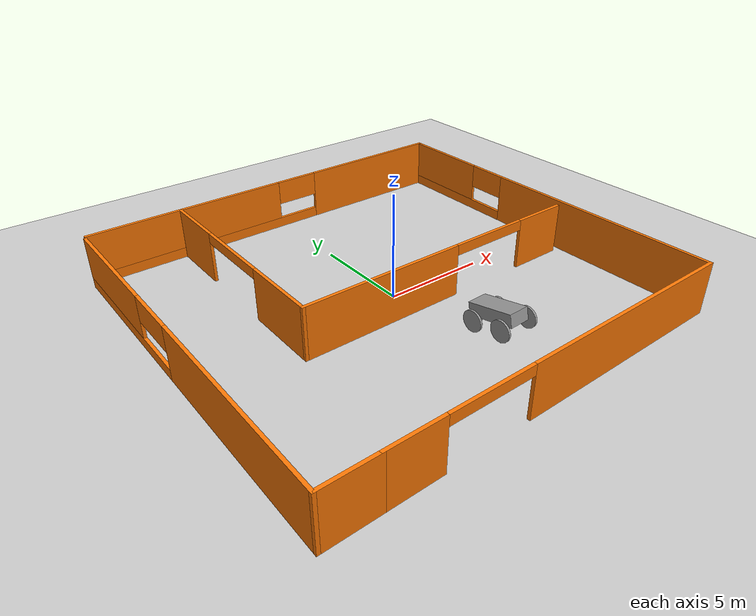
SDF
<sdf version="1.6">
 <world name="default">
  <model name="ground_plane">
   <static>1</static>
   <link name="link">
    <collision name="collision">
     <geometry><plane><normal>0 0 1</normal><size>100 100</size></plane></geometry>
     <surface>
      <contact><collide_bitmask>65535</collide_bitmask></contact>
      <friction><ode><mu>100</mu><mu2>50</mu2></ode></friction>
     </surface>
    </collision>
    <visual name="visual">
     <cast_shadows>0</cast_shadows>
     <geometry><plane><normal>0 0 1</normal><size>100 100</size></plane></geometry>
     <material>
      <script><uri>file://media/materials/scripts/gazebo.material</uri><name>Gazebo/Grey</name></script>
     </material>
    </visual>
   </link>
  </model>
  <model name="ground_plane">
   <static>1</static>
   <link name="link">
    <collision name="collision">
     <geometry><plane><normal>0 0 1</normal><size>100 100</size></plane></geometry>
     <surface>
      <contact><collide_bitmask>65535</collide_bitmask></contact>
      <friction><ode><mu>100</mu><mu2>50</mu2></ode></friction>
     </surface>
    </collision>
    <visual name="visual">
     <cast_shadows>0</cast_shadows>
     <geometry><plane><normal>0 0 1</normal><size>100 100</size></plane></geometry>
     <material>
      <script><uri>file://media/materials/scripts/gazebo.material</uri><name>Gazebo/Grey</name></script>
     </material>
    </visual>
   </link>
  </model>
  <model name="table">
   <static>1</static>
   <link name="link">
    <collision name="surface">
     <pose>0 0 1 0 -0 0</pose>
     <geometry><box><size>1.5 0.8 0.03</size></box></geometry>
     <surface><friction><ode><mu>0.6</mu><mu2>0.6</mu2></ode></friction></surface>
    </collision>
    <visual name="visual1">
     <pose>0 0 1 0 -0 0</pose>
     <geometry><box><size>1.5 0.8 0.03</size></box></geometry>
     <material>
      <script><uri>file://media/materials/scripts/gazebo.material</uri><name>Gazebo/Wood</name></script>
     </material>
    </visual>
    <collision name="front_left_leg">
     <pose>0.68 0.38 0.5 0 -0 0</pose>
     <geometry><cylinder><radius>0.02</radius><length>1</length></cylinder></geometry>
    </collision>
    <visual name="front_left_leg">
     <pose>0.68 0.38 0.5 0 -0 0</pose>
     <geometry><cylinder><radius>0.02</radius><length>1</length></cylinder></geometry>
     <material>
      <script><uri>file://media/materials/scripts/gazebo.material</uri><name>Gazebo/Grey</name></script>
     </material>
    </visual>
    <collision name="front_right_leg">
     <pose>0.68 -0.38 0.5 0 -0 0</pose>
     <geometry><cylinder><radius>0.02</radius><length>1</length></cylinder></geometry>
    </collision>
    <visual name="front_right_leg">
     <pose>0.68 -0.38 0.5 0 -0 0</pose>
     <geometry><cylinder><radius>0.02</radius><length>1</length></cylinder></geometry>
     <material>
      <script><uri>file://media/materials/scripts/gazebo.material</uri><name>Gazebo/Grey</name></script>
     </material>
    </visual>
    <collision name="back_right_leg">
     <pose>-0.68 -0.38 0.5 0 -0 0</pose>
     <geometry><cylinder><radius>0.02</radius><length>1</length></cylinder></geometry>
    </collision>
    <visual name="back_right_leg">
     <pose>-0.68 -0.38 0.5 0 -0 0</pose>
     <geometry><cylinder><radius>0.02</radius><length>1</length></cylinder></geometry>
     <material>
      <script><uri>file://media/materials/scripts/gazebo.material</uri><name>Gazebo/Grey</name></script>
     </material>
    </visual>
    <collision name="back_left_leg">
     <pose>-0.68 0.38 0.5 0 -0 0</pose>
     <geometry><cylinder><radius>0.02</radius><length>1</length></cylinder></geometry>
    </collision>
    <visual name="back_left_leg">
     <pose>-0.68 0.38 0.5 0 -0 0</pose>
     <geometry><cylinder><radius>0.02</radius><length>1</length></cylinder></geometry>
     <material>
      <script><uri>file://media/materials/scripts/gazebo.material</uri><name>Gazebo/Grey</name></script>
     </material>
    </visual>
   </link>
  </model>
  <model name="buildingmodel">
   <pose>-0.320081 0.0932 0 0 -0 0</pose>
   <link name="Wall_16">
    <pose>1.175 -9.3 0 0 -0 0</pose>
    <visual name="Wall_16_Visual_0">
     <pose>-7.45803 0 1.25 0 -0 0</pose>
     <geometry><box><size>2.58395 0.15 2.5</size></box></geometry>
     <material>
      <script><uri>file://media/materials/scripts/gazebo.material</uri><name>Gazebo/Grey</name></script>
      <ambient>0.996078 0.47451 0.0196078 1</ambient>
     </material>
     <meta><layer>0</layer></meta>
    </visual>
    <collision name="Wall_16_Collision_0">
     <geometry><box><size>2.58395 0.15 2.5</size></box></geometry>
     <pose>-7.45803 0 1.25 0 -0 0</pose>
    </collision>
    <visual name="Wall_16_Visual_1">
     <pose>3.26705 0 1.25 0 -0 0</pose>
     <geometry><box><size>10.9659 0.15 2.5</size></box></geometry>
     <material>
      <script><uri>file://media/materials/scripts/gazebo.material</uri><name>Gazebo/Grey</name></script>
      <ambient>0.996078 0.47451 0.0196078 1</ambient>
     </material>
     <meta><layer>0</layer></meta>
    </visual>
    <collision name="Wall_16_Collision_1">
     <geometry><box><size>10.9659 0.15 2.5</size></box></geometry>
     <pose>3.26705 0 1.25 0 -0 0</pose>
    </collision>
    <visual name="Wall_16_Visual_2">
     <pose>-4.19098 0 2.25 0 -0 0</pose>
     <geometry><box><size>3.95016 0.15 0.5</size></box></geometry>
     <material>
      <script><uri>file://media/materials/scripts/gazebo.material</uri><name>Gazebo/Grey</name></script>
      <ambient>0.996078 0.47451 0.0196078 1</ambient>
     </material>
     <meta><layer>0</layer></meta>
    </visual>
    <collision name="Wall_16_Collision_2">
     <geometry><box><size>3.95016 0.15 0.5</size></box></geometry>
     <pose>-4.19098 0 2.25 0 -0 0</pose>
    </collision>
   </link>
   <link name="Wall_19">
    <collision name="Wall_19_Collision">
     <geometry><box><size>2.5 0.15 2.5</size></box></geometry>
     <pose>0 0 1.25 0 -0 0</pose>
    </collision>
    <visual name="Wall_19_Visual">
     <pose>0 0 1.25 0 -0 0</pose>
     <geometry><box><size>2.5 0.15 2.5</size></box></geometry>
     <material>
      <script><uri>file://media/materials/scripts/gazebo.material</uri><name>Gazebo/Grey</name></script>
      <ambient>0.996078 0.47451 0.0196078 1</ambient>
     </material>
     <meta><layer>0</layer></meta>
    </visual>
    <pose>-8.675 -9.3 0 0 -0 3.14159</pose>
   </link>
   <link name="Wall_39">
    <pose>9.85 0 0 0 -0 1.5708</pose>
    <visual name="Wall_39_Visual_0">
     <pose>-3.40224 0 1.25 0 -0 0</pose>
     <geometry><box><size>11.9455 0.15 2.5</size></box></geometry>
     <material>
      <script><uri>file://media/materials/scripts/gazebo.material</uri><name>Gazebo/Grey</name></script>
      <ambient>0.996078 0.47451 0.0196078 1</ambient>
     </material>
     <meta><layer>0</layer></meta>
    </visual>
    <collision name="Wall_39_Collision_0">
     <geometry><box><size>11.9455 0.15 2.5</size></box></geometry>
     <pose>-3.40224 0 1.25 0 -0 0</pose>
    </collision>
    <visual name="Wall_39_Visual_1">
     <pose>5.97276 0 0.25 0 -0 0</pose>
     <geometry><box><size>6.80448 0.15 0.5</size></box></geometry>
     <material>
      <script><uri>file://media/materials/scripts/gazebo.material</uri><name>Gazebo/Grey</name></script>
      <ambient>0.996078 0.47451 0.0196078 1</ambient>
     </material>
     <meta><layer>0</layer></meta>
    </visual>
    <collision name="Wall_39_Collision_1">
     <geometry><box><size>6.80448 0.15 0.5</size></box></geometry>
     <pose>5.97276 0 0.25 0 -0 0</pose>
    </collision>
    <visual name="Wall_39_Visual_2">
     <pose>6.99343 0 1.5 0 -0 0</pose>
     <geometry><box><size>4.76314 0.15 2</size></box></geometry>
     <material>
      <script><uri>file://media/materials/scripts/gazebo.material</uri><name>Gazebo/Grey</name></script>
      <ambient>0.996078 0.47451 0.0196078 1</ambient>
     </material>
     <meta><layer>0</layer></meta>
    </visual>
    <collision name="Wall_39_Collision_2">
     <geometry><box><size>4.76314 0.15 2</size></box></geometry>
     <pose>6.99343 0 1.5 0 -0 0</pose>
    </collision>
    <visual name="Wall_39_Visual_3">
     <pose>3.59119 0 1.9 0 -0 0</pose>
     <geometry><box><size>2.04134 0.15 1.2</size></box></geometry>
     <material>
      <script><uri>file://media/materials/scripts/gazebo.material</uri><name>Gazebo/Grey</name></script>
      <ambient>0.996078 0.47451 0.0196078 1</ambient>
     </material>
     <meta><layer>0</layer></meta>
    </visual>
    <collision name="Wall_39_Collision_3">
     <geometry><box><size>2.04134 0.15 1.2</size></box></geometry>
     <pose>3.59119 0 1.9 0 -0 0</pose>
    </collision>
   </link>
   <link name="Wall_40">
    <pose>0.05 9.3 0 0 -0 3.14159</pose>
    <visual name="Wall_40_Visual_0">
     <pose>-6.06574 0 1.25 0 -0 0</pose>
     <geometry><box><size>7.61852 0.15 2.5</size></box></geometry>
     <material>
      <script><uri>file://media/materials/scripts/gazebo.material</uri><name>Gazebo/Grey</name></script>
      <ambient>0.996078 0.47451 0.0196078 1</ambient>
     </material>
     <meta><layer>0</layer></meta>
    </visual>
    <collision name="Wall_40_Collision_0">
     <geometry><box><size>7.61852 0.15 2.5</size></box></geometry>
     <pose>-6.06574 0 1.25 0 -0 0</pose>
    </collision>
    <visual name="Wall_40_Visual_1">
     <pose>3.80926 0 0.25 0 -0 0</pose>
     <geometry><box><size>12.1315 0.15 0.5</size></box></geometry>
     <material>
      <script><uri>file://media/materials/scripts/gazebo.material</uri><name>Gazebo/Grey</name></script>
      <ambient>0.996078 0.47451 0.0196078 1</ambient>
     </material>
     <meta><layer>0</layer></meta>
    </visual>
    <collision name="Wall_40_Collision_1">
     <geometry><box><size>12.1315 0.15 0.5</size></box></geometry>
     <pose>3.80926 0 0.25 0 -0 0</pose>
    </collision>
    <visual name="Wall_40_Visual_2">
     <pose>4.90087 0 1.5 0 -0 0</pose>
     <geometry><box><size>9.94827 0.15 2</size></box></geometry>
     <material>
      <script><uri>file://media/materials/scripts/gazebo.material</uri><name>Gazebo/Grey</name></script>
      <ambient>0.996078 0.47451 0.0196078 1</ambient>
     </material>
     <meta><layer>0</layer></meta>
    </visual>
    <collision name="Wall_40_Collision_2">
     <geometry><box><size>9.94827 0.15 2</size></box></geometry>
     <pose>4.90087 0 1.5 0 -0 0</pose>
    </collision>
    <visual name="Wall_40_Visual_3">
     <pose>-1.16487 0 1.9 0 -0 0</pose>
     <geometry><box><size>2.18321 0.15 1.2</size></box></geometry>
     <material>
      <script><uri>file://media/materials/scripts/gazebo.material</uri><name>Gazebo/Grey</name></script>
      <ambient>0.996078 0.47451 0.0196078 1</ambient>
     </material>
     <meta><layer>0</layer></meta>
    </visual>
    <collision name="Wall_40_Collision_3">
     <geometry><box><size>2.18321 0.15 1.2</size></box></geometry>
     <pose>-1.16487 0 1.9 0 -0 0</pose>
    </collision>
   </link>
   <link name="Wall_42">
    <pose>-9.85 -0.125 0 0 -0 1.5708</pose>
    <visual name="Wall_42_Visual_0">
     <pose>-4.32759 0 1.25 0 -0 0</pose>
     <geometry><box><size>9.84482 0.15 2.5</size></box></geometry>
     <material>
      <script><uri>file://media/materials/scripts/gazebo.material</uri><name>Gazebo/Grey</name></script>
      <ambient>0.996078 0.47451 0.0196078 1</ambient>
     </material>
     <meta><layer>0</layer></meta>
    </visual>
    <collision name="Wall_42_Collision_0">
     <geometry><box><size>9.84482 0.15 2.5</size></box></geometry>
     <pose>-4.32759 0 1.25 0 -0 0</pose>
    </collision>
    <visual name="Wall_42_Visual_1">
     <pose>4.92241 0 0.25 0 -0 0</pose>
     <geometry><box><size>8.65518 0.15 0.5</size></box></geometry>
     <material>
      <script><uri>file://media/materials/scripts/gazebo.material</uri><name>Gazebo/Grey</name></script>
      <ambient>0.996078 0.47451 0.0196078 1</ambient>
     </material>
     <meta><layer>0</layer></meta>
    </visual>
    <collision name="Wall_42_Collision_1">
     <geometry><box><size>8.65518 0.15 0.5</size></box></geometry>
     <pose>4.92241 0 0.25 0 -0 0</pose>
    </collision>
    <visual name="Wall_42_Visual_2">
     <pose>6.20908 0 1.5 0 -0 0</pose>
     <geometry><box><size>6.08183 0.15 2</size></box></geometry>
     <material>
      <script><uri>file://media/materials/scripts/gazebo.material</uri><name>Gazebo/Grey</name></script>
      <ambient>0.996078 0.47451 0.0196078 1</ambient>
     </material>
     <meta><layer>0</layer></meta>
    </visual>
    <collision name="Wall_42_Collision_2">
     <geometry><box><size>6.08183 0.15 2</size></box></geometry>
     <pose>6.20908 0 1.5 0 -0 0</pose>
    </collision>
    <visual name="Wall_42_Visual_3">
     <pose>1.88149 0 1.9 0 -0 0</pose>
     <geometry><box><size>2.57335 0.15 1.2</size></box></geometry>
     <material>
      <script><uri>file://media/materials/scripts/gazebo.material</uri><name>Gazebo/Grey</name></script>
      <ambient>0.996078 0.47451 0.0196078 1</ambient>
     </material>
     <meta><layer>0</layer></meta>
    </visual>
    <collision name="Wall_42_Collision_3">
     <geometry><box><size>2.57335 0.15 1.2</size></box></geometry>
     <pose>1.88149 0 1.9 0 -0 0</pose>
    </collision>
   </link>
   <link name="Wall_45">
    <pose>2.02344 -1.60383 0 0 -0 3.14159</pose>
    <visual name="Wall_45_Visual_0">
     <pose>-6.0053 0 1.25 0 -0 0</pose>
     <geometry><box><size>2.7394 0.15 2.5</size></box></geometry>
     <material>
      <script><uri>file://media/materials/scripts/gazebo.material</uri><name>Gazebo/Grey</name></script>
      <ambient>0.996078 0.47451 0.0196078 1</ambient>
     </material>
     <meta><layer>0</layer></meta>
    </visual>
    <collision name="Wall_45_Collision_0">
     <geometry><box><size>2.7394 0.15 2.5</size></box></geometry>
     <pose>-6.0053 0 1.25 0 -0 0</pose>
    </collision>
    <visual name="Wall_45_Visual_1">
     <pose>3.35584 0 1.25 0 -0 0</pose>
     <geometry><box><size>8.03832 0.15 2.5</size></box></geometry>
     <material>
      <script><uri>file://media/materials/scripts/gazebo.material</uri><name>Gazebo/Grey</name></script>
      <ambient>0.996078 0.47451 0.0196078 1</ambient>
     </material>
     <meta><layer>0</layer></meta>
    </visual>
    <collision name="Wall_45_Collision_1">
     <geometry><box><size>8.03832 0.15 2.5</size></box></geometry>
     <pose>3.35584 0 1.25 0 -0 0</pose>
    </collision>
    <visual name="Wall_45_Visual_2">
     <pose>-2.64946 0 2.25 0 -0 0</pose>
     <geometry><box><size>3.97228 0.15 0.5</size></box></geometry>
     <material>
      <script><uri>file://media/materials/scripts/gazebo.material</uri><name>Gazebo/Grey</name></script>
      <ambient>0.996078 0.47451 0.0196078 1</ambient>
     </material>
     <meta><layer>0</layer></meta>
    </visual>
    <collision name="Wall_45_Collision_2">
     <geometry><box><size>3.97228 0.15 0.5</size></box></geometry>
     <pose>-2.64946 0 2.25 0 -0 0</pose>
    </collision>
   </link>
   <link name="Wall_46">
    <pose>-5.27656 3.82117 0 0 -0 1.5708</pose>
    <visual name="Wall_46_Visual_0">
     <pose>-3.61661 0 1.25 0 -0 0</pose>
     <geometry><box><size>3.76677 0.15 2.5</size></box></geometry>
     <material>
      <script><uri>file://media/materials/scripts/gazebo.material</uri><name>Gazebo/Grey</name></script>
      <ambient>0.996078 0.47451 0.0196078 1</ambient>
     </material>
     <meta><layer>0</layer></meta>
    </visual>
    <collision name="Wall_46_Collision_0">
     <geometry><box><size>3.76677 0.15 2.5</size></box></geometry>
     <pose>-3.61661 0 1.25 0 -0 0</pose>
    </collision>
    <visual name="Wall_46_Visual_1">
     <pose>3.9047 0 1.25 0 -0 0</pose>
     <geometry><box><size>3.19059 0.15 2.5</size></box></geometry>
     <material>
      <script><uri>file://media/materials/scripts/gazebo.material</uri><name>Gazebo/Grey</name></script>
      <ambient>0.996078 0.47451 0.0196078 1</ambient>
     </material>
     <meta><layer>0</layer></meta>
    </visual>
    <collision name="Wall_46_Collision_1">
     <geometry><box><size>3.19059 0.15 2.5</size></box></geometry>
     <pose>3.9047 0 1.25 0 -0 0</pose>
    </collision>
    <visual name="Wall_46_Visual_2">
     <pose>0.288089 0 2.25 0 -0 0</pose>
     <geometry><box><size>4.04264 0.15 0.5</size></box></geometry>
     <material>
      <script><uri>file://media/materials/scripts/gazebo.material</uri><name>Gazebo/Grey</name></script>
      <ambient>0.996078 0.47451 0.0196078 1</ambient>
     </material>
     <meta><layer>0</layer></meta>
    </visual>
    <collision name="Wall_46_Collision_2">
     <geometry><box><size>4.04264 0.15 0.5</size></box></geometry>
     <pose>0.288089 0 2.25 0 -0 0</pose>
    </collision>
   </link>
   <static>1</static>
  </model>
  <model name="model_clone">
   <link name="link_0_clone">
    <inertial>
     <mass>1</mass>
     <inertia><ixx>0.145833</ixx><ixy>0</ixy><ixz>0</ixz><iyy>0.145833</iyy><iyz>0</iyz><izz>0.125</izz></inertia>
    </inertial>
    <pose>0.800049 0.773824 -0.030357 0 -0 0</pose>
    <visual name="visual">
     <pose>0 0 0 0 1.5707 0</pose>
     <geometry><cylinder><radius>0.5</radius><length>0.1</length></cylinder></geometry>
     <material>
      <lighting>1</lighting>
      <script><uri>file://media/materials/scripts/gazebo.material</uri><name>Gazebo/Grey</name></script>
      <shader type="vertex"><normal_map>__default__</normal_map></shader>
      <ambient>0.3 0.3 0.3 1</ambient>
      <diffuse>0.7 0.7 0.7 1</diffuse>
      <specular>0.01 0.01 0.01 1</specular>
      <emissive>0 0 0 1</emissive>
     </material>
    </visual>
    <collision name="collision">
     <pose>0 0 0 0 1.5707 0</pose>
     <geometry><cylinder><radius>0.5</radius><length>0.1</length></cylinder></geometry>
     <surface>
      <friction>
       <ode><mu>1</mu><mu2>1</mu2><fdir1>0 0 0</fdir1><slip1>0</slip1><slip2>0</slip2></ode>
       <torsional>
        <coefficient>1</coefficient>
        <patch_radius>0</patch_radius>
        <surface_radius>0</surface_radius>
        <use_patch_radius>1</use_patch_radius>
        <ode><slip>0</slip></ode>
       </torsional>
      </friction>
      <bounce><restitution_coefficient>0</restitution_coefficient><threshold>1e+06</threshold></bounce>
      <contact>
       <collide_without_contact>0</collide_without_contact>
       <collide_without_contact_bitmask>1</collide_without_contact_bitmask>
       <collide_bitmask>1</collide_bitmask>
       <ode>
        <soft_cfm>0</soft_cfm>
        <soft_erp>0.2</soft_erp>
        <kp>1e+13</kp>
        <kd>1</kd>
        <max_vel>0.01</max_vel>
        <min_depth>0</min_depth>
       </ode>
       <bullet>
        <split_impulse>1</split_impulse>
        <split_impulse_penetration_threshold>-0.01</split_impulse_penetration_threshold>
        <soft_cfm>0</soft_cfm>
        <soft_erp>0.2</soft_erp>
        <kp>1e+13</kp>
        <kd>1</kd>
       </bullet>
      </contact>
     </surface>
    </collision>
   </link>
   <link name="link_0_clone_clone">
    <inertial>
     <mass>1</mass>
     <inertia><ixx>0.145833</ixx><ixy>0</ixy><ixz>0</ixz><iyy>0.145833</iyy><iyz>0</iyz><izz>0.125</izz></inertia>
    </inertial>
    <pose>-0.800048 0.773824 -0.030357 0 -0 0</pose>
    <visual name="visual">
     <pose>0 0 0 0 1.5707 0</pose>
     <geometry><cylinder><radius>0.5</radius><length>0.1</length></cylinder></geometry>
     <material>
      <lighting>1</lighting>
      <script><uri>file://media/materials/scripts/gazebo.material</uri><name>Gazebo/Grey</name></script>
      <shader type="vertex"><normal_map>__default__</normal_map></shader>
      <ambient>0.3 0.3 0.3 1</ambient>
      <diffuse>0.7 0.7 0.7 1</diffuse>
      <specular>0.01 0.01 0.01 1</specular>
      <emissive>0 0 0 1</emissive>
     </material>
    </visual>
    <collision name="collision">
     <pose>0 0 0 0 1.5707 0</pose>
     <geometry><cylinder><radius>0.5</radius><length>0.1</length></cylinder></geometry>
     <surface>
      <friction>
       <ode><mu>1</mu><mu2>1</mu2><fdir1>0 0 0</fdir1><slip1>0</slip1><slip2>0</slip2></ode>
       <torsional>
        <coefficient>1</coefficient>
        <patch_radius>0</patch_radius>
        <surface_radius>0</surface_radius>
        <use_patch_radius>1</use_patch_radius>
        <ode><slip>0</slip></ode>
       </torsional>
      </friction>
      <bounce><restitution_coefficient>0</restitution_coefficient><threshold>1e+06</threshold></bounce>
      <contact>
       <collide_without_contact>0</collide_without_contact>
       <collide_without_contact_bitmask>1</collide_without_contact_bitmask>
       <collide_bitmask>1</collide_bitmask>
       <ode>
        <soft_cfm>0</soft_cfm>
        <soft_erp>0.2</soft_erp>
        <kp>1e+13</kp>
        <kd>1</kd>
        <max_vel>0.01</max_vel>
        <min_depth>0</min_depth>
       </ode>
       <bullet>
        <split_impulse>1</split_impulse>
        <split_impulse_penetration_threshold>-0.01</split_impulse_penetration_threshold>
        <soft_cfm>0</soft_cfm>
        <soft_erp>0.2</soft_erp>
        <kp>1e+13</kp>
        <kd>1</kd>
       </bullet>
      </contact>
     </surface>
    </collision>
   </link>
   <link name="link_0_clone_clone_clone">
    <inertial>
     <mass>1</mass>
     <inertia><ixx>0.145833</ixx><ixy>0</ixy><ixz>0</ixz><iyy>0.145833</iyy><iyz>0</iyz><izz>0.125</izz></inertia>
    </inertial>
    <pose>-0.800048 -0.758676 -0.062857 0 -0 0</pose>
    <visual name="visual">
     <pose>0 0 0 0 1.5707 0</pose>
     <geometry><cylinder><radius>0.5</radius><length>0.1</length></cylinder></geometry>
     <material>
      <lighting>1</lighting>
      <script><uri>file://media/materials/scripts/gazebo.material</uri><name>Gazebo/Grey</name></script>
      <shader type="vertex"><normal_map>__default__</normal_map></shader>
      <ambient>0.3 0.3 0.3 1</ambient>
      <diffuse>0.7 0.7 0.7 1</diffuse>
      <specular>0.01 0.01 0.01 1</specular>
      <emissive>0 0 0 1</emissive>
     </material>
    </visual>
    <collision name="collision">
     <pose>0 0 0 0 1.5707 0</pose>
     <geometry><cylinder><radius>0.5</radius><length>0.1</length></cylinder></geometry>
     <surface>
      <friction>
       <ode><mu>1</mu><mu2>1</mu2><fdir1>0 0 0</fdir1><slip1>0</slip1><slip2>0</slip2></ode>
       <torsional>
        <coefficient>1</coefficient>
        <patch_radius>0</patch_radius>
        <surface_radius>0</surface_radius>
        <use_patch_radius>1</use_patch_radius>
        <ode><slip>0</slip></ode>
       </torsional>
      </friction>
      <bounce><restitution_coefficient>0</restitution_coefficient><threshold>1e+06</threshold></bounce>
      <contact>
       <collide_without_contact>0</collide_without_contact>
       <collide_without_contact_bitmask>1</collide_without_contact_bitmask>
       <collide_bitmask>1</collide_bitmask>
       <ode>
        <soft_cfm>0</soft_cfm>
        <soft_erp>0.2</soft_erp>
        <kp>1e+13</kp>
        <kd>1</kd>
        <max_vel>0.01</max_vel>
        <min_depth>0</min_depth>
       </ode>
       <bullet>
        <split_impulse>1</split_impulse>
        <split_impulse_penetration_threshold>-0.01</split_impulse_penetration_threshold>
        <soft_cfm>0</soft_cfm>
        <soft_erp>0.2</soft_erp>
        <kp>1e+13</kp>
        <kd>1</kd>
       </bullet>
      </contact>
     </surface>
    </collision>
   </link>
   <link name="link_0_clone_clone_clone_0">
    <inertial>
     <mass>1</mass>
     <inertia><ixx>0.145833</ixx><ixy>0</ixy><ixz>0</ixz><iyy>0.145833</iyy><iyz>0</iyz><izz>0.125</izz></inertia>
    </inertial>
    <pose>0.800049 -0.758676 -0.062857 0 -0 0</pose>
    <visual name="visual">
     <pose>0 0 0 0 1.5707 0</pose>
     <geometry><cylinder><radius>0.5</radius><length>0.1</length></cylinder></geometry>
     <material>
      <lighting>1</lighting>
      <script><uri>file://media/materials/scripts/gazebo.material</uri><name>Gazebo/Grey</name></script>
      <shader type="vertex"><normal_map>__default__</normal_map></shader>
      <ambient>0.3 0.3 0.3 1</ambient>
      <diffuse>0.7 0.7 0.7 1</diffuse>
      <specular>0.01 0.01 0.01 1</specular>
      <emissive>0 0 0 1</emissive>
     </material>
    </visual>
    <collision name="collision">
     <pose>0 0 0 0 1.5707 0</pose>
     <geometry><cylinder><radius>0.5</radius><length>0.1</length></cylinder></geometry>
     <surface>
      <friction>
       <ode><mu>1</mu><mu2>1</mu2><fdir1>0 0 0</fdir1><slip1>0</slip1><slip2>0</slip2></ode>
       <torsional>
        <coefficient>1</coefficient>
        <patch_radius>0</patch_radius>
        <surface_radius>0</surface_radius>
        <use_patch_radius>1</use_patch_radius>
        <ode><slip>0</slip></ode>
       </torsional>
      </friction>
      <bounce><restitution_coefficient>0</restitution_coefficient><threshold>1e+06</threshold></bounce>
      <contact>
       <collide_without_contact>0</collide_without_contact>
       <collide_without_contact_bitmask>1</collide_without_contact_bitmask>
       <collide_bitmask>1</collide_bitmask>
       <ode>
        <soft_cfm>0</soft_cfm>
        <soft_erp>0.2</soft_erp>
        <kp>1e+13</kp>
        <kd>1</kd>
        <max_vel>0.01</max_vel>
        <min_depth>0</min_depth>
       </ode>
       <bullet>
        <split_impulse>1</split_impulse>
        <split_impulse_penetration_threshold>-0.01</split_impulse_penetration_threshold>
        <soft_cfm>0</soft_cfm>
        <soft_erp>0.2</soft_erp>
        <kp>1e+13</kp>
        <kd>1</kd>
       </bullet>
      </contact>
     </surface>
    </collision>
   </link>
   <link name="link_1">
    <inertial>
     <mass>1</mass>
     <inertia>
      <ixx>0.166667</ixx>
      <ixy>0</ixy>
      <ixz>0</ixz>
      <iyy>0.166667</iyy>
      <iyz>0</iyz>
      <izz>0.166667</izz>
     </inertia>
    </inertial>
    <pose>0 0.741324 -0.062857 0 -0 0</pose>
    <visual name="visual">
     <geometry><box><size>1.5 0.15 0.15</size></box></geometry>
     <material>
      <lighting>1</lighting>
      <script><uri>file://media/materials/scripts/gazebo.material</uri><name>Gazebo/Grey</name></script>
      <shader type="vertex"><normal_map>__default__</normal_map></shader>
      <ambient>0.3 0.3 0.3 1</ambient>
      <diffuse>0.7 0.7 0.7 1</diffuse>
      <specular>0.01 0.01 0.01 1</specular>
      <emissive>0 0 0 1</emissive>
     </material>
    </visual>
    <collision name="collision">
     <geometry><box><size>1.5 0.15 0.15</size></box></geometry>
     <surface>
      <friction>
       <ode><mu>1</mu><mu2>1</mu2><fdir1>0 0 0</fdir1><slip1>0</slip1><slip2>0</slip2></ode>
       <torsional>
        <coefficient>1</coefficient>
        <patch_radius>0</patch_radius>
        <surface_radius>0</surface_radius>
        <use_patch_radius>1</use_patch_radius>
        <ode><slip>0</slip></ode>
       </torsional>
      </friction>
      <bounce><restitution_coefficient>0</restitution_coefficient><threshold>1e+06</threshold></bounce>
      <contact>
       <collide_without_contact>0</collide_without_contact>
       <collide_without_contact_bitmask>1</collide_without_contact_bitmask>
       <collide_bitmask>1</collide_bitmask>
       <ode>
        <soft_cfm>0</soft_cfm>
        <soft_erp>0.2</soft_erp>
        <kp>1e+13</kp>
        <kd>1</kd>
        <max_vel>0.01</max_vel>
        <min_depth>0</min_depth>
       </ode>
       <bullet>
        <split_impulse>1</split_impulse>
        <split_impulse_penetration_threshold>-0.01</split_impulse_penetration_threshold>
        <soft_cfm>0</soft_cfm>
        <soft_erp>0.2</soft_erp>
        <kp>1e+13</kp>
        <kd>1</kd>
       </bullet>
      </contact>
     </surface>
    </collision>
   </link>
   <link name="link_1_clone">
    <inertial>
     <mass>1</mass>
     <inertia>
      <ixx>0.166667</ixx>
      <ixy>0</ixy>
      <ixz>0</ixz>
      <iyy>0.166667</iyy>
      <iyz>0</iyz>
      <izz>0.166667</izz>
     </inertia>
    </inertial>
    <pose>0 -0.758676 -0.062857 0 -0 0</pose>
    <visual name="visual">
     <geometry><box><size>1.5 0.15 0.15</size></box></geometry>
     <material>
      <lighting>1</lighting>
      <script><uri>file://media/materials/scripts/gazebo.material</uri><name>Gazebo/Grey</name></script>
      <shader type="vertex"><normal_map>__default__</normal_map></shader>
      <ambient>0.3 0.3 0.3 1</ambient>
      <diffuse>0.7 0.7 0.7 1</diffuse>
      <specular>0.01 0.01 0.01 1</specular>
      <emissive>0 0 0 1</emissive>
     </material>
    </visual>
    <collision name="collision">
     <geometry><box><size>1.5 0.15 0.15</size></box></geometry>
     <surface>
      <friction>
       <ode><mu>1</mu><mu2>1</mu2><fdir1>0 0 0</fdir1><slip1>0</slip1><slip2>0</slip2></ode>
       <torsional>
        <coefficient>1</coefficient>
        <patch_radius>0</patch_radius>
        <surface_radius>0</surface_radius>
        <use_patch_radius>1</use_patch_radius>
        <ode><slip>0</slip></ode>
       </torsional>
      </friction>
      <bounce><restitution_coefficient>0</restitution_coefficient><threshold>1e+06</threshold></bounce>
      <contact>
       <collide_without_contact>0</collide_without_contact>
       <collide_without_contact_bitmask>1</collide_without_contact_bitmask>
       <collide_bitmask>1</collide_bitmask>
       <ode>
        <soft_cfm>0</soft_cfm>
        <soft_erp>0.2</soft_erp>
        <kp>1e+13</kp>
        <kd>1</kd>
        <max_vel>0.01</max_vel>
        <min_depth>0</min_depth>
       </ode>
       <bullet>
        <split_impulse>1</split_impulse>
        <split_impulse_penetration_threshold>-0.01</split_impulse_penetration_threshold>
        <soft_cfm>0</soft_cfm>
        <soft_erp>0.2</soft_erp>
        <kp>1e+13</kp>
        <kd>1</kd>
       </bullet>
      </contact>
     </surface>
    </collision>
   </link>
   <link name="link_4">
    <inertial>
     <mass>2.30548</mass>
     <inertia><ixx>1.2133</ixx><ixy>0</ixy><ixz>0</ixz><iyy>0.384247</iyy><iyz>0</iyz><izz>1.2133</izz></inertia>
    </inertial>
    <pose>0 0.069782 0.312143 0 -0 0</pose>
    <visual name="visual">
     <geometry><box><size>1 2.30548 0.6</size></box></geometry>
     <material>
      <lighting>1</lighting>
      <script><uri>file://media/materials/scripts/gazebo.material</uri><name>Gazebo/Grey</name></script>
      <emissive>0 0 0 1</emissive>
      <shader type="vertex"><normal_map>__default__</normal_map></shader>
      <ambient>0.3 0.3 0.3 1</ambient>
      <diffuse>0.7 0.7 0.7 1</diffuse>
      <specular>0.01 0.01 0.01 1</specular>
     </material>
    </visual>
    <collision name="collision">
     <geometry><box><size>1 2.30548 0.6</size></box></geometry>
     <surface>
      <friction>
       <ode><mu>1</mu><mu2>1</mu2><fdir1>0 0 0</fdir1><slip1>0</slip1><slip2>0</slip2></ode>
       <torsional>
        <coefficient>1</coefficient>
        <patch_radius>0</patch_radius>
        <surface_radius>0</surface_radius>
        <use_patch_radius>1</use_patch_radius>
        <ode><slip>0</slip></ode>
       </torsional>
      </friction>
      <bounce><restitution_coefficient>0</restitution_coefficient><threshold>1e+06</threshold></bounce>
      <contact>
       <collide_without_contact>0</collide_without_contact>
       <collide_without_contact_bitmask>1</collide_without_contact_bitmask>
       <collide_bitmask>1</collide_bitmask>
       <ode>
        <soft_cfm>0</soft_cfm>
        <soft_erp>0.2</soft_erp>
        <kp>1e+13</kp>
        <kd>1</kd>
        <max_vel>0.01</max_vel>
        <min_depth>0</min_depth>
       </ode>
       <bullet>
        <split_impulse>1</split_impulse>
        <split_impulse_penetration_threshold>-0.01</split_impulse_penetration_threshold>
        <soft_cfm>0</soft_cfm>
        <soft_erp>0.2</soft_erp>
        <kp>1e+13</kp>
        <kd>1</kd>
       </bullet>
      </contact>
     </surface>
    </collision>
   </link>
   <joint name="link_1_JOINT_2" type="revolute">
    <parent>link_1</parent>
    <child>link_0_clone</child>
    <axis>
     <xyz>1 0 0</xyz>
     <use_parent_model_frame>0</use_parent_model_frame>
     <limit>
      <lower>-1.79769e+308</lower>
      <upper>1.79769e+308</upper>
      <effort>-1</effort>
      <velocity>-1</velocity>
     </limit>
     <dynamics>
      <spring_reference>0</spring_reference>
      <spring_stiffness>0</spring_stiffness>
      <damping>0</damping>
     </dynamics>
    </axis>
    <physics>
     <ode><limit><cfm>0</cfm><erp>0.2</erp></limit><suspension><cfm>0</cfm><erp>0.2</erp></suspension></ode>
    </physics>
   </joint>
   <joint name="link_1_JOINT_3" type="revolute">
    <parent>link_1</parent>
    <child>link_0_clone_clone</child>
    <axis>
     <xyz>1 0 0</xyz>
     <use_parent_model_frame>0</use_parent_model_frame>
     <limit>
      <lower>-1.79769e+308</lower>
      <upper>1.79769e+308</upper>
      <effort>-1</effort>
      <velocity>-1</velocity>
     </limit>
     <dynamics>
      <spring_reference>0</spring_reference>
      <spring_stiffness>0</spring_stiffness>
      <damping>0</damping>
     </dynamics>
    </axis>
    <physics>
     <ode><limit><cfm>0</cfm><erp>0.2</erp></limit><suspension><cfm>0</cfm><erp>0.2</erp></suspension></ode>
    </physics>
   </joint>
   <joint name="link_1_JOINT_4" type="revolute">
    <parent>link_1</parent>
    <child>link_1_clone</child>
    <axis>
     <xyz>1 0 0</xyz>
     <use_parent_model_frame>0</use_parent_model_frame>
     <limit>
      <lower>-1.79769e+308</lower>
      <upper>1.79769e+308</upper>
      <effort>-1</effort>
      <velocity>-1</velocity>
     </limit>
     <dynamics>
      <spring_reference>0</spring_reference>
      <spring_stiffness>0</spring_stiffness>
      <damping>0</damping>
     </dynamics>
    </axis>
    <physics>
     <ode><limit><cfm>0</cfm><erp>0.2</erp></limit><suspension><cfm>0</cfm><erp>0.2</erp></suspension></ode>
    </physics>
   </joint>
   <joint name="link_1_JOINT_7" type="revolute">
    <parent>link_1</parent>
    <child>link_4</child>
    <axis>
     <xyz>1 0 0</xyz>
     <use_parent_model_frame>0</use_parent_model_frame>
     <limit>
      <lower>-1.79769e+308</lower>
      <upper>1.79769e+308</upper>
      <effort>-1</effort>
      <velocity>-1</velocity>
     </limit>
     <dynamics>
      <spring_reference>0</spring_reference>
      <spring_stiffness>0</spring_stiffness>
      <damping>0</damping>
     </dynamics>
    </axis>
    <physics>
     <ode><limit><cfm>0</cfm><erp>0.2</erp></limit><suspension><cfm>0</cfm><erp>0.2</erp></suspension></ode>
    </physics>
   </joint>
   <joint name="link_1_JOINT_8" type="revolute">
    <parent>link_1</parent>
    <child>link_4</child>
    <axis>
     <xyz>1 0 0</xyz>
     <use_parent_model_frame>0</use_parent_model_frame>
     <limit>
      <lower>-1.79769e+308</lower>
      <upper>1.79769e+308</upper>
      <effort>-1</effort>
      <velocity>-1</velocity>
     </limit>
     <dynamics>
      <spring_reference>0</spring_reference>
      <spring_stiffness>0</spring_stiffness>
      <damping>0</damping>
     </dynamics>
    </axis>
    <physics>
     <ode><limit><cfm>0</cfm><erp>0.2</erp></limit><suspension><cfm>0</cfm><erp>0.2</erp></suspension></ode>
    </physics>
   </joint>
   <joint name="link_1_clone_JOINT_5" type="revolute">
    <parent>link_1_clone</parent>
    <child>link_0_clone_clone_clone</child>
    <axis>
     <xyz>1 0 0</xyz>
     <use_parent_model_frame>0</use_parent_model_frame>
     <limit>
      <lower>-1.79769e+308</lower>
      <upper>1.79769e+308</upper>
      <effort>-1</effort>
      <velocity>-1</velocity>
     </limit>
     <dynamics>
      <spring_reference>0</spring_reference>
      <spring_stiffness>0</spring_stiffness>
      <damping>0</damping>
     </dynamics>
    </axis>
    <physics>
     <ode><limit><cfm>0</cfm><erp>0.2</erp></limit><suspension><cfm>0</cfm><erp>0.2</erp></suspension></ode>
    </physics>
   </joint>
   <joint name="link_1_clone_JOINT_6" type="revolute">
    <parent>link_1_clone</parent>
    <child>link_0_clone_clone_clone_0</child>
    <axis>
     <xyz>1 0 0</xyz>
     <use_parent_model_frame>0</use_parent_model_frame>
     <limit>
      <lower>-1.79769e+308</lower>
      <upper>1.79769e+308</upper>
      <effort>-1</effort>
      <velocity>-1</velocity>
     </limit>
     <dynamics>
      <spring_reference>0</spring_reference>
      <spring_stiffness>0</spring_stiffness>
      <damping>0</damping>
     </dynamics>
    </axis>
    <physics>
     <ode><limit><cfm>0</cfm><erp>0.2</erp></limit><suspension><cfm>0</cfm><erp>0.2</erp></suspension></ode>
    </physics>
   </joint>
   <joint name="link_1_clone_JOINT_9" type="revolute">
    <parent>link_1_clone</parent>
    <child>link_4</child>
    <axis>
     <xyz>1 0 0</xyz>
     <use_parent_model_frame>0</use_parent_model_frame>
     <limit>
      <lower>-1.79769e+308</lower>
      <upper>1.79769e+308</upper>
      <effort>-1</effort>
      <velocity>-1</velocity>
     </limit>
     <dynamics>
      <spring_reference>0</spring_reference>
      <spring_stiffness>0</spring_stiffness>
      <damping>0</damping>
     </dynamics>
    </axis>
    <physics>
     <ode><limit><cfm>0</cfm><erp>0.2</erp></limit><suspension><cfm>0</cfm><erp>0.2</erp></suspension></ode>
    </physics>
   </joint>
   <static>0</static>
   <pose>1.71605 -4.83242 0.693737 -0.213641 -1e-06 0.022871</pose>
  </model>
  <model name="my_ball">
   <link name="link_0">
    <inertial>
     <mass>1</mass>
     <inertia><ixx>0.1</ixx><ixy>0</ixy><ixz>0</ixz><iyy>0.1</iyy><iyz>0</iyz><izz>0.1</izz></inertia>
    </inertial>
    <visual name="visual">
     <geometry><sphere><radius>0.1</radius></sphere></geometry>
     <material>
      <lighting>1</lighting>
      <script><uri>file://media/materials/scripts/gazebo.material</uri><name>Gazebo/Grey</name></script>
      <shader type="pixel"><normal_map>__default__</normal_map></shader>
      <ambient>1 1 1 1</ambient>
      <diffuse>1 1 1 1</diffuse>
      <specular>1 1 1 1</specular>
      <emissive>1 1 1 1</emissive>
     </material>
    </visual>
    <collision name="collision">
     <geometry><sphere><radius>0.1</radius></sphere></geometry>
     <surface>
      <friction>
       <ode><mu>1</mu><mu2>1</mu2><fdir1>0 0 0</fdir1><slip1>0</slip1><slip2>0</slip2></ode>
       <torsional>
        <coefficient>1</coefficient>
        <patch_radius>0</patch_radius>
        <surface_radius>0</surface_radius>
        <use_patch_radius>1</use_patch_radius>
        <ode><slip>0</slip></ode>
       </torsional>
      </friction>
      <bounce><restitution_coefficient>0</restitution_coefficient><threshold>1e+06</threshold></bounce>
      <contact>
       <collide_without_contact>0</collide_without_contact>
       <collide_without_contact_bitmask>1</collide_without_contact_bitmask>
       <collide_bitmask>1</collide_bitmask>
       <ode>
        <soft_cfm>0</soft_cfm>
        <soft_erp>0.2</soft_erp>
        <kp>1e+13</kp>
        <kd>1</kd>
        <max_vel>0.01</max_vel>
        <min_depth>0</min_depth>
       </ode>
       <bullet>
        <split_impulse>1</split_impulse>
        <split_impulse_penetration_threshold>-0.01</split_impulse_penetration_threshold>
        <soft_cfm>0</soft_cfm>
        <soft_erp>0.2</soft_erp>
        <kp>1e+13</kp>
        <kd>1</kd>
       </bullet>
      </contact>
     </surface>
    </collision>
   </link>
   <static>0</static>
   <pose>3.52944 1.4116 0.1 0 -0 0</pose>
  </model>
 </world>
</sdf>
